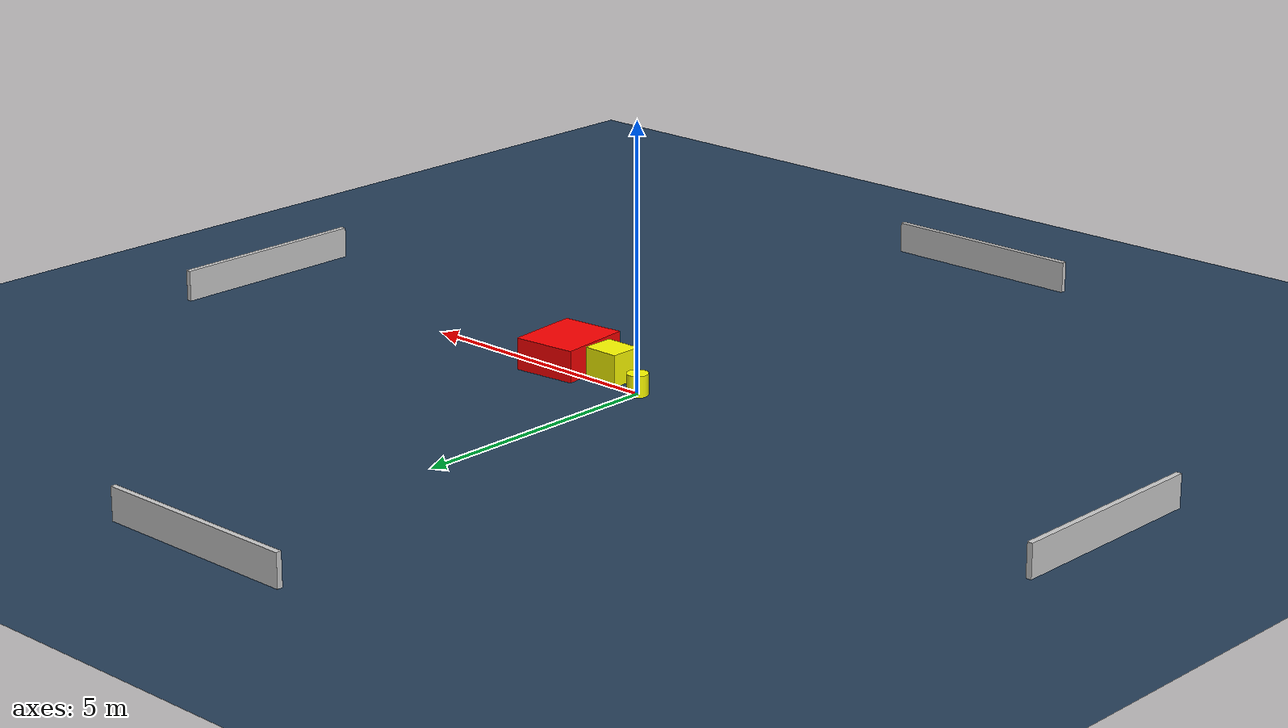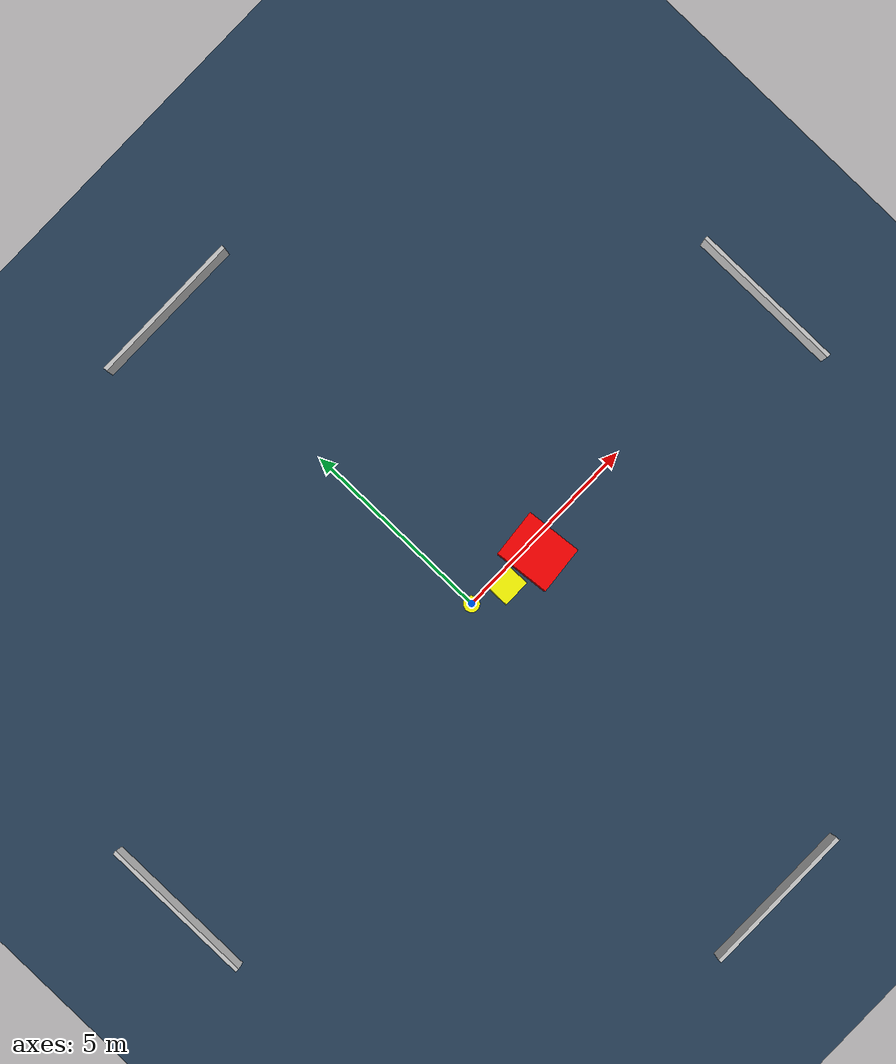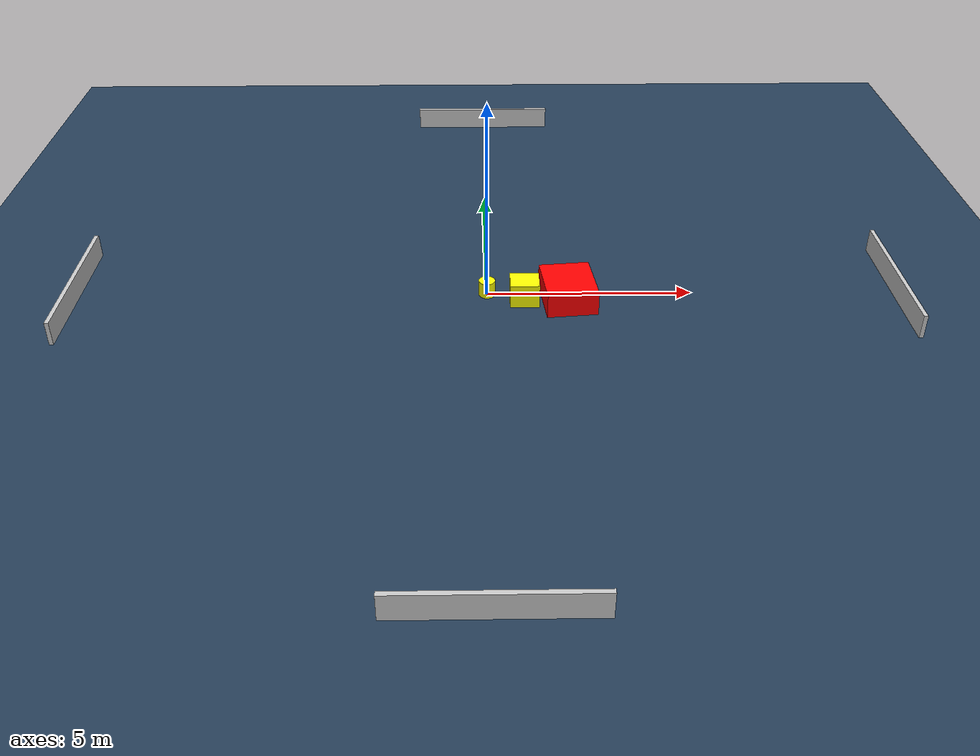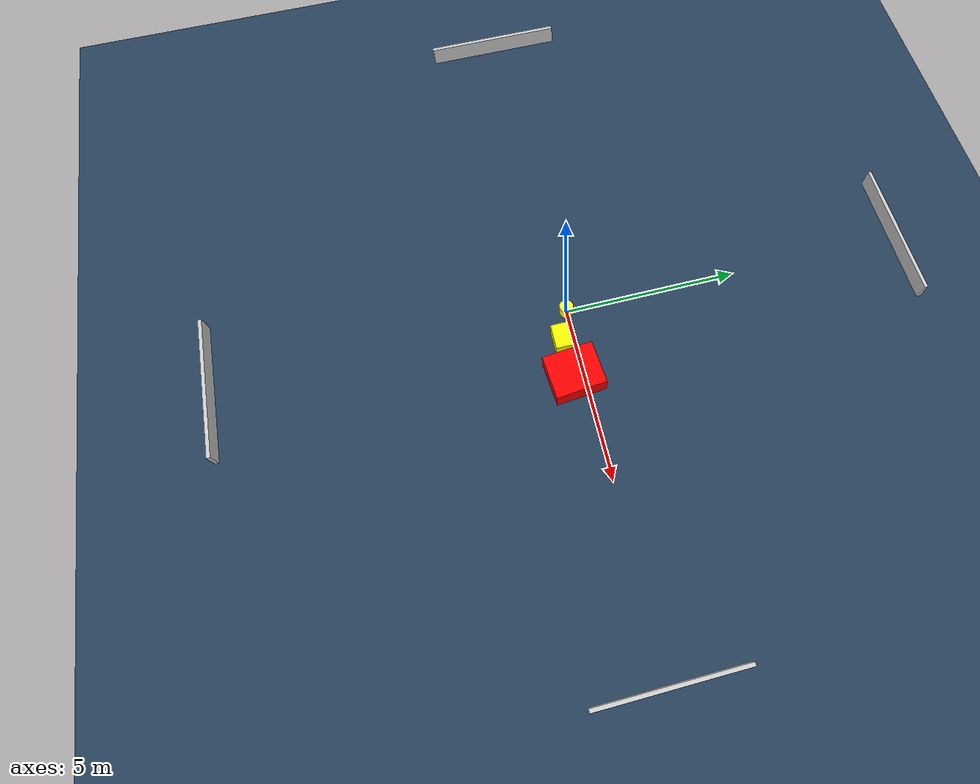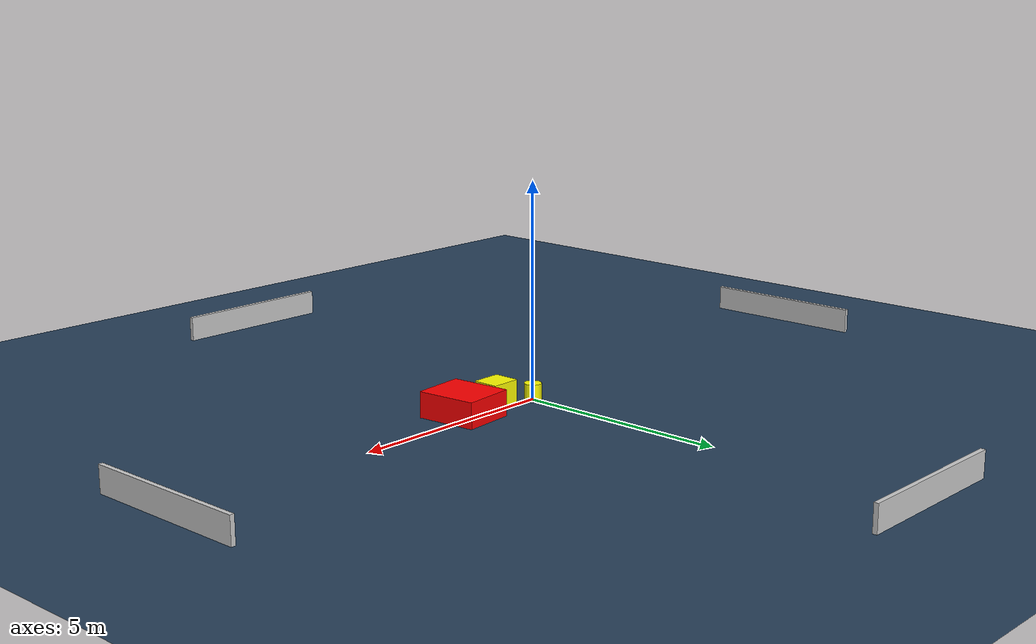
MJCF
<?xml version="1.0" ?>
<mujoco model="generated_environment">
  <option timestep="0.01" integrator="RK4" cone="elliptic"/>
  <default>
    <geom density="1"/>
  </default>
  <asset>
    <texture builtin="gradient" height="3072" name="skybox" rgb1="0.3 0.5 0.7" rgb2="0 0 0" type="skybox" width="512"/>
    <texture builtin="checker" height="300" name="groundplane" rgb1="0.2 0.3 0.4" rgb2="0.1 0.2 0.3" type="2d" width="300"/>
    <material name="groundplane" reflectance="0.2" texrepeat="5 5" texture="groundplane"/>
  </asset>
  <worldbody>
    <light dir="0 0 -1" directional="true" pos="0 0 1.5"/>
    <geom condim="3" friction="0.5 0.005 0.001" material="groundplane" name="floor" pos="0 0 0" size="0 0 0.05" type="plane"/>
    <body name="walls">
      <geom name="wall_1" condim="4" pos="-10.0 0.0 0.3" rgba="0.800000011920929 0.800000011920929 0.800000011920929 1.0" size="0.05 2.0 0.3" type="box"/>
      <geom name="wall_2" condim="4" pos="10.0 0.0 0.3" rgba="0.800000011920929 0.800000011920929 0.800000011920929 1.0" size="0.05 2.0 0.3" type="box"/>
      <geom name="wall_3" condim="4" pos="0.0 -10.0 0.3" rgba="0.800000011920929 0.800000011920929 0.800000011920929 1.0" size="2.0 0.05 0.3" type="box"/>
      <geom name="wall_4" condim="4" pos="0.0 10.0 0.3" rgba="0.800000011920929 0.800000011920929 0.800000011920929 1.0" size="2.0 0.05 0.3" type="box"/>
    </body>
    <body name="robot">
      <joint name="joint_x" type="slide" pos="0 0 0" axis="1 0 0"/>
      <joint name="joint_y" type="slide" pos="0 0 0" axis="0 1 0"/>
      <geom name="robot" type="cylinder" pos="0.0 0.0 0.2" size="0.2 0.2 0.0" mass="5.0" friction="1.0 0.005 0.0001" condim="4" rgba="1.0 1.0 0.0 1.0"/>
    </body>
    <body name="obstacle_1_movable">
      <geom name="obstacle_1_movable" condim="4" pos="0.9014626918482044 -0.29123292533870354 0.3" euler="0 0 180.45873709913465" friction="0.0 0.005 0.001" rgba="1.0 1.0 0.0 1.0" size="0.35293285494479654 0.30688159268597603 0.3" type="box" mass="0.1"/>
      <joint type="free"/>
    </body>
    <body name="obstacle_2_static">
      <geom name="obstacle_2_static" condim="4" pos="1.9606729932848663 -0.2695779924861736 0.3" euler="0 0 275.64677577227377" friction="0.0 0.005 0.001" rgba="1.0 0.0 0.0 1.0" size="0.7159730255236525 0.6175247542803097 0.3" type="box"/>
    </body>
  </worldbody>
  <actuator>
    <motor name="actuator_x" joint="joint_x" gear="1" ctrlrange="-1 1"/>
    <motor name="actuator_y" joint="joint_y" gear="1" ctrlrange="-1 1"/>
  </actuator>
</mujoco>
